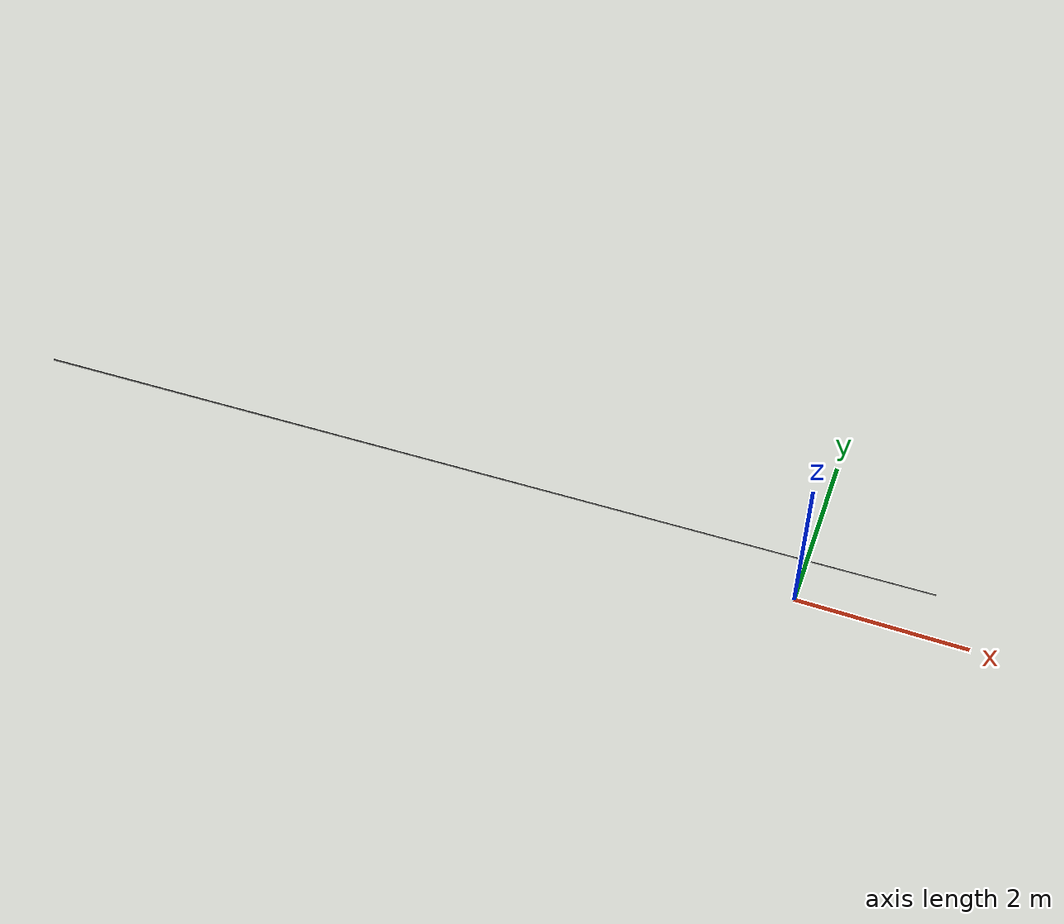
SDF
<?xml version='1.0'?>
<sdf version='1.7'>
  <model name='cable3'>
    <link name='cable0'>
      <pose>-2.21668 -1.33267 2.60167 -2.50268 0.853663 -1.88392</pose>
      <inertial>
        <inertia>
          <ixx>0.001</ixx>
          <iyy>0.001</iyy>
          <izz>0.001</izz>
          <ixy>0</ixy>
          <ixz>0</ixz>
          <iyz>0</iyz>
        </inertia>
        <mass>0.001</mass>
        <pose>0 0 0 0 -0 0</pose>
      </inertial>
      <self_collide>0</self_collide>
      <enable_wind>0</enable_wind>
      <kinematic>0</kinematic>
      <visual name='visual'>
        <geometry>
          <cylinder>
            <radius>0.005</radius>
            <length>9.86258</length>
          </cylinder>
        </geometry>
        <material>
          <script>
            <uri>file://media/materials/scripts/kitchen.material</uri>
            <name>Gazebo/Black</name>
          </script>
          <shader type='pixel'/>
        </material>
        <pose>0 0 0 0 -0 0</pose>
        <transparency>0</transparency>
        <cast_shadows>1</cast_shadows>
      </visual>
    </link>
    <link name='virt_X0'>
      <inertial>
        <inertia>
          <ixx>0.001</ixx>
          <iyy>0.001</iyy>
          <izz>0.001</izz>
          <ixy>0</ixy>
          <ixz>0</ixz>
          <iyz>0</iyz>
        </inertia>
        <mass>0.001</mass>
        <pose>0 0 0 0 -0 0</pose>
      </inertial>
      <pose>-3.5 -2 3.5 -2.50268 0.853663 -1.88392</pose>
      <self_collide>0</self_collide>
      <enable_wind>0</enable_wind>
      <kinematic>0</kinematic>
    </link>
    <link name='virt_Xpf0'>
      <inertial>
        <inertia>
          <ixx>0.001</ixx>
          <iyy>0.001</iyy>
          <izz>0.001</izz>
          <ixy>0</ixy>
          <ixz>0</ixz>
          <iyz>0</iyz>
        </inertia>
        <mass>0.001</mass>
        <pose>0 0 0 0 -0 0</pose>
      </inertial>
      <pose>1.5 0.6 0 -2.50268 0.853663 -1.88392</pose>
      <self_collide>0</self_collide>
      <enable_wind>0</enable_wind>
      <kinematic>0</kinematic>
    </link>
    <link name='virt_Y0'>
      <inertial>
        <inertia>
          <ixx>0.001</ixx>
          <iyy>0.001</iyy>
          <izz>0.001</izz>
          <ixy>0</ixy>
          <ixz>0</ixz>
          <iyz>0</iyz>
        </inertia>
        <mass>0.001</mass>
        <pose>0 0 0 0 -0 0</pose>
      </inertial>
      <pose>-3.5 -2 3.5 -2.50268 0.853663 -1.88392</pose>
      <self_collide>0</self_collide>
      <enable_wind>0</enable_wind>
      <kinematic>0</kinematic>
    </link>
    <link name='virt_Ypf0'>
      <inertial>
        <inertia>
          <ixx>0.001</ixx>
          <iyy>0.001</iyy>
          <izz>0.001</izz>
          <ixy>0</ixy>
          <ixz>0</ixz>
          <iyz>0</iyz>
        </inertia>
        <mass>0.001</mass>
        <pose>0 0 0 0 -0 0</pose>
      </inertial>
      <pose>1.5 0.6 0 -2.50268 0.853663 -1.88392</pose>
      <self_collide>0</self_collide>
      <enable_wind>0</enable_wind>
      <kinematic>0</kinematic>
    </link>
    <joint name='cable0' type='prismatic'>
      <parent>virt_Y0</parent>
      <child>cable0</child>
      <pose>0 0 -1.26569 -2.50268 0.853663 -1.88392</pose>
      <axis>
        <xyz>0.753694 0.391917 0.527586</xyz>
        <limit>
          <lower>-4.93129</lower>
          <upper>4.93129</upper>
          <effort>10000</effort>
          <velocity>10</velocity>
        </limit>
        <dynamics>
          <spring_reference>0</spring_reference>
          <spring_stiffness>0</spring_stiffness>
          <damping>1</damping>
          <friction>0</friction>
        </dynamics>
      </axis>
      <physics>
        <ode>
          <limit>
            <cfm>0</cfm>
            <erp>0.2</erp>
          </limit>
          <suspension>
            <cfm>0</cfm>
            <erp>0.2</erp>
          </suspension>
        </ode>
      </physics>
    </joint>
    <joint name='rev_Y0' type='revolute'>
      <parent>virt_X0</parent>
      <child>virt_Y0</child>
      <pose>0 0 0 -2.50268 0.853663 -1.88392</pose>
      <axis>
        <xyz>-0.625268 0.674861 0.391921</xyz>
        <limit>
          <lower>-1e+16</lower>
          <upper>1e+16</upper>
          <effort>1000</effort>
          <velocity>10</velocity>
        </limit>
        <dynamics>
          <spring_reference>0</spring_reference>
          <spring_stiffness>0</spring_stiffness>
          <damping>0.01</damping>
          <friction>0</friction>
        </dynamics>
      </axis>
      <physics>
        <ode>
          <limit>
            <cfm>0</cfm>
            <erp>0.2</erp>
          </limit>
          <suspension>
            <cfm>0</cfm>
            <erp>0.2</erp>
          </suspension>
        </ode>
      </physics>
    </joint>
    <joint name='rev_Ypf0' type='revolute'>
      <parent>virt_Xpf0</parent>
      <child>virt_Ypf0</child>
      <pose>0 0 0 -2.50268 0.853663 -1.88392</pose>
      <axis>
        <xyz>-0.590772 0.6928 -0.413542</xyz>
        <limit>
          <lower>-1e+16</lower>
          <upper>1e+16</upper>
          <effort>1000</effort>
          <velocity>10</velocity>
        </limit>
        <dynamics>
          <spring_reference>0</spring_reference>
          <spring_stiffness>0</spring_stiffness>
          <damping>0.01</damping>
          <friction>0</friction>
        </dynamics>
      </axis>
      <physics>
        <ode>
          <limit>
            <cfm>0</cfm>
            <erp>0.2</erp>
          </limit>
          <suspension>
            <cfm>0</cfm>
            <erp>0.2</erp>
          </suspension>
        </ode>
      </physics>
    </joint>
    <joint name='rev_Zpf0' type='revolute'>
      <parent>cable0</parent>
      <child>virt_Ypf0</child>
      <pose>0 0 0 -2.50268 0.853663 -1.88392</pose>
      <axis>
        <xyz>0.795275 0.41354 -0.443308</xyz>
        <limit>
          <lower>-1e+16</lower>
          <upper>1e+16</upper>
          <effort>1000</effort>
          <velocity>10</velocity>
        </limit>
        <dynamics>
          <spring_reference>0</spring_reference>
          <spring_stiffness>0</spring_stiffness>
          <damping>0.01</damping>
          <friction>0</friction>
        </dynamics>
      </axis>
      <physics>
        <ode>
          <limit>
            <cfm>0</cfm>
            <erp>0.2</erp>
          </limit>
          <suspension>
            <cfm>0</cfm>
            <erp>0.2</erp>
          </suspension>
        </ode>
      </physics>
    </joint>
    <static>0</static>
    <allow_auto_disable>1</allow_auto_disable>
    <plugin name='cdpr_plugin' filename='libcdpr_plugin.so'>
      <robotNamespace>/</robotNamespace>
    </plugin>
  </model>
</sdf>
